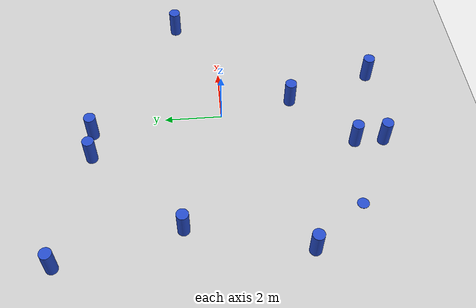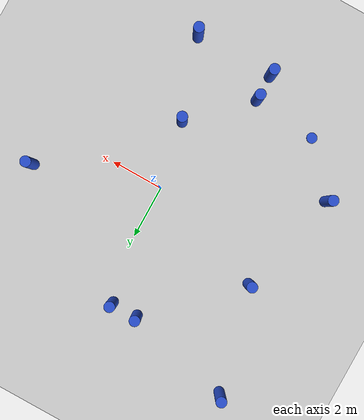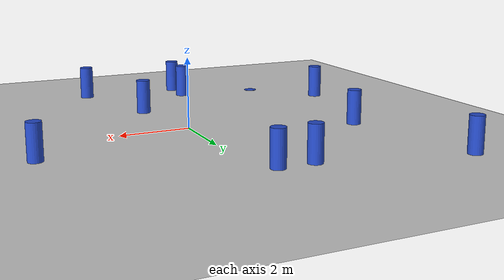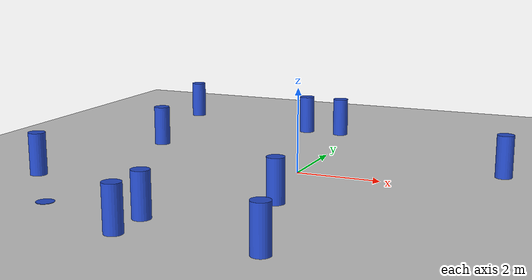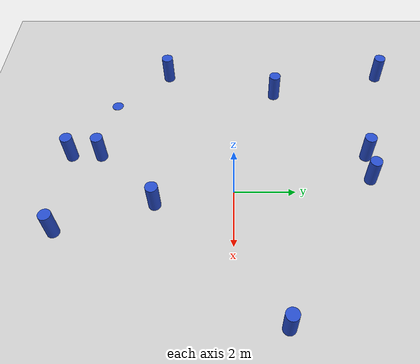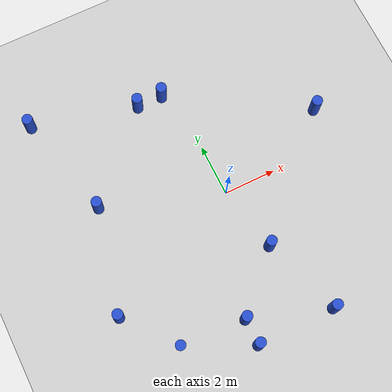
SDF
<sdf version="1.7">
 <world name="default">
  <physics type="ode">
   <ode>
    <solver>
     <type>quick</type>
     <iters>20</iters>
     <sor>1</sor>
     <use_dynamic_moi_rescaling>0</use_dynamic_moi_rescaling>
    </solver>
    <constraints>
     <cfm>0</cfm>
     <erp>0.2</erp>
     <contact_max_correcting_vel>100</contact_max_correcting_vel>
     <contact_surface_layer>0</contact_surface_layer>
    </constraints>
   </ode>
   <real_time_update_rate>1000</real_time_update_rate>
   <max_step_size>0.001</max_step_size>
   <real_time_factor>1</real_time_factor>
  </physics>
  <light name="sun" type="directional">
   <pose>0 0 10 0 -0 0</pose>
   <diffuse>0.8 0.8 0.8 1</diffuse>
   <specular>0.2 0.2 0.2 1</specular>
   <attenuation>
    <range>1000</range>
    <constant>0.9</constant>
    <linear>0.01</linear>
    <quadratic>0.001</quadratic>
   </attenuation>
   <direction>-0.5 0.1 -0.9</direction>
   <spot><inner_angle>0</inner_angle><outer_angle>0</outer_angle><falloff>0</falloff></spot>
  </light>
  <model name="ground_plane">
   <static>1</static>
   <link name="link">
    <collision name="collision">
     <geometry><plane><normal>0 0 1</normal><size>100 100</size></plane></geometry>
     <surface>
      <contact><collide_bitmask>65535</collide_bitmask></contact>
      <friction><ode><mu>100</mu><mu2>50</mu2></ode></friction>
     </surface>
    </collision>
    <visual name="visual">
     <cast_shadows>0</cast_shadows>
     <geometry><plane><normal>0 0 1</normal><size>100 100</size></plane></geometry>
     <material>
      <script><uri>file://media/materials/scripts/gazebo.material</uri><name>Gazebo/Grey</name></script>
     </material>
    </visual>
   </link>
  </model>
  <gravity>0 0 -9.81</gravity>
  <magnetic_field>6e-06 2.3e-05 -4.2e-05</magnetic_field>
  <atmosphere type="adiabatic"/>
  <scene><ambient>0.4 0.4 0.4 1</ambient><background>0.7 0.7 0.7 1</background><shadows>1</shadows></scene>
  <spherical_coordinates>
   <surface_model>EARTH_WGS84</surface_model>
   <latitude_deg>0</latitude_deg>
   <longitude_deg>0</longitude_deg>
   <elevation>0</elevation>
   <heading_deg>0</heading_deg>
  </spherical_coordinates>
  <model name="20x100cm_cylinder_clone">
   <link name="link">
    <inertial>
     <mass>1</mass>
     <inertia><ixx>0.145833</ixx><ixy>0</ixy><ixz>0</ixz><iyy>0.145833</iyy><iyz>0</iyz><izz>0.125</izz></inertia>
    </inertial>
    <visual name="visual">
     <geometry><cylinder><radius>0.2</radius><length>1</length></cylinder></geometry>
     <material>
      <script><name>Gazebo/Blue</name><uri>file://media/materials/scripts/gazebo.material</uri></script>
      <shader type="pixel"><normal_map>__default__</normal_map></shader>
      <ambient>0.3 0.3 0.3 1</ambient>
      <diffuse>0.7 0.7 0.7 1</diffuse>
      <specular>0.01 0.01 0.01 1</specular>
      <emissive>0 0 0 1</emissive>
     </material>
    </visual>
    <collision name="collision">
     <geometry><cylinder><radius>0.2</radius><length>1</length></cylinder></geometry>
     <surface>
      <friction>
       <ode><mu>1</mu><mu2>1</mu2><fdir1>0 0 0</fdir1><slip1>0</slip1><slip2>0</slip2></ode>
       <torsional>
        <coefficient>1</coefficient>
        <patch_radius>0</patch_radius>
        <surface_radius>0</surface_radius>
        <use_patch_radius>1</use_patch_radius>
        <ode><slip>0</slip></ode>
       </torsional>
      </friction>
      <bounce><restitution_coefficient>0</restitution_coefficient><threshold>1e+06</threshold></bounce>
      <contact>
       <collide_without_contact>0</collide_without_contact>
       <collide_without_contact_bitmask>1</collide_without_contact_bitmask>
       <collide_bitmask>1</collide_bitmask>
       <ode>
        <soft_cfm>0</soft_cfm>
        <soft_erp>0.2</soft_erp>
        <kp>1e+13</kp>
        <kd>1</kd>
        <max_vel>0.01</max_vel>
        <min_depth>0</min_depth>
       </ode>
       <bullet>
        <split_impulse>1</split_impulse>
        <split_impulse_penetration_threshold>-0.01</split_impulse_penetration_threshold>
        <soft_cfm>0</soft_cfm>
        <soft_erp>0.2</soft_erp>
        <kp>1e+13</kp>
        <kd>1</kd>
       </bullet>
      </contact>
     </surface>
    </collision>
   </link>
   <static>0</static>
   <pose>-5.49993 -2.49997 0.499999 1e-06 1e-06 -0.000211</pose>
  </model>
  <model name="20x100cm_cylinder_clone_0">
   <link name="link">
    <inertial>
     <mass>1</mass>
     <inertia><ixx>0.145833</ixx><ixy>0</ixy><ixz>0</ixz><iyy>0.145833</iyy><iyz>0</iyz><izz>0.125</izz></inertia>
    </inertial>
    <visual name="visual">
     <geometry><cylinder><radius>0.2</radius><length>1</length></cylinder></geometry>
     <material>
      <script><name>Gazebo/Blue</name><uri>file://media/materials/scripts/gazebo.material</uri></script>
      <shader type="pixel"><normal_map>__default__</normal_map></shader>
      <ambient>0.3 0.3 0.3 1</ambient>
      <diffuse>0.7 0.7 0.7 1</diffuse>
      <specular>0.01 0.01 0.01 1</specular>
      <emissive>0 0 0 1</emissive>
     </material>
    </visual>
    <collision name="collision">
     <geometry><cylinder><radius>0.2</radius><length>1</length></cylinder></geometry>
     <surface>
      <friction>
       <ode><mu>1</mu><mu2>1</mu2><fdir1>0 0 0</fdir1><slip1>0</slip1><slip2>0</slip2></ode>
       <torsional>
        <coefficient>1</coefficient>
        <patch_radius>0</patch_radius>
        <surface_radius>0</surface_radius>
        <use_patch_radius>1</use_patch_radius>
        <ode><slip>0</slip></ode>
       </torsional>
      </friction>
      <bounce><restitution_coefficient>0</restitution_coefficient><threshold>1e+06</threshold></bounce>
      <contact>
       <collide_without_contact>0</collide_without_contact>
       <collide_without_contact_bitmask>1</collide_without_contact_bitmask>
       <collide_bitmask>1</collide_bitmask>
       <ode>
        <soft_cfm>0</soft_cfm>
        <soft_erp>0.2</soft_erp>
        <kp>1e+13</kp>
        <kd>1</kd>
        <max_vel>0.01</max_vel>
        <min_depth>0</min_depth>
       </ode>
       <bullet>
        <split_impulse>1</split_impulse>
        <split_impulse_penetration_threshold>-0.01</split_impulse_penetration_threshold>
        <soft_cfm>0</soft_cfm>
        <soft_erp>0.2</soft_erp>
        <kp>1e+13</kp>
        <kd>1</kd>
       </bullet>
      </contact>
     </surface>
    </collision>
   </link>
   <static>0</static>
   <pose>-1.49993 -4.49997 0.499999 1e-06 1e-06 -0.000211</pose>
  </model>
  <model name="20x100cm_cylinder_clone_1">
   <link name="link">
    <inertial>
     <mass>1</mass>
     <inertia><ixx>0.145833</ixx><ixy>0</ixy><ixz>0</ixz><iyy>0.145833</iyy><iyz>0</iyz><izz>0.125</izz></inertia>
    </inertial>
    <visual name="visual">
     <geometry><cylinder><radius>0.2</radius><length>1</length></cylinder></geometry>
     <material>
      <script><name>Gazebo/Blue</name><uri>file://media/materials/scripts/gazebo.material</uri></script>
      <shader type="pixel"><normal_map>__default__</normal_map></shader>
      <ambient>0.3 0.3 0.3 1</ambient>
      <diffuse>0.7 0.7 0.7 1</diffuse>
      <specular>0.01 0.01 0.01 1</specular>
      <emissive>0 0 0 1</emissive>
     </material>
    </visual>
    <collision name="collision">
     <geometry><cylinder><radius>0.2</radius><length>1</length></cylinder></geometry>
     <surface>
      <friction>
       <ode><mu>1</mu><mu2>1</mu2><fdir1>0 0 0</fdir1><slip1>0</slip1><slip2>0</slip2></ode>
       <torsional>
        <coefficient>1</coefficient>
        <patch_radius>0</patch_radius>
        <surface_radius>0</surface_radius>
        <use_patch_radius>1</use_patch_radius>
        <ode><slip>0</slip></ode>
       </torsional>
      </friction>
      <bounce><restitution_coefficient>0</restitution_coefficient><threshold>1e+06</threshold></bounce>
      <contact>
       <collide_without_contact>0</collide_without_contact>
       <collide_without_contact_bitmask>1</collide_without_contact_bitmask>
       <collide_bitmask>1</collide_bitmask>
       <ode>
        <soft_cfm>0</soft_cfm>
        <soft_erp>0.2</soft_erp>
        <kp>1e+13</kp>
        <kd>1</kd>
        <max_vel>0.01</max_vel>
        <min_depth>0</min_depth>
       </ode>
       <bullet>
        <split_impulse>1</split_impulse>
        <split_impulse_penetration_threshold>-0.01</split_impulse_penetration_threshold>
        <soft_cfm>0</soft_cfm>
        <soft_erp>0.2</soft_erp>
        <kp>1e+13</kp>
        <kd>1</kd>
       </bullet>
      </contact>
     </surface>
    </collision>
   </link>
   <static>0</static>
   <pose>0.500068 -2.49997 0.499999 1e-06 1e-06 -0.000211</pose>
  </model>
  <model name="20x100cm_cylinder_clone_2">
   <link name="link">
    <inertial>
     <mass>1</mass>
     <inertia><ixx>0.145833</ixx><ixy>0</ixy><ixz>0</ixz><iyy>0.145833</iyy><iyz>0</iyz><izz>0.125</izz></inertia>
    </inertial>
    <visual name="visual">
     <geometry><cylinder><radius>0.2</radius><length>1</length></cylinder></geometry>
     <material>
      <script><name>Gazebo/Blue</name><uri>file://media/materials/scripts/gazebo.material</uri></script>
      <shader type="pixel"><normal_map>__default__</normal_map></shader>
      <ambient>0.3 0.3 0.3 1</ambient>
      <diffuse>0.7 0.7 0.7 1</diffuse>
      <specular>0.01 0.01 0.01 1</specular>
      <emissive>0 0 0 1</emissive>
     </material>
    </visual>
    <collision name="collision">
     <geometry><cylinder><radius>0.2</radius><length>1</length></cylinder></geometry>
     <surface>
      <friction>
       <ode><mu>1</mu><mu2>1</mu2><fdir1>0 0 0</fdir1><slip1>0</slip1><slip2>0</slip2></ode>
       <torsional>
        <coefficient>1</coefficient>
        <patch_radius>0</patch_radius>
        <surface_radius>0</surface_radius>
        <use_patch_radius>1</use_patch_radius>
        <ode><slip>0</slip></ode>
       </torsional>
      </friction>
      <bounce><restitution_coefficient>0</restitution_coefficient><threshold>1e+06</threshold></bounce>
      <contact>
       <collide_without_contact>0</collide_without_contact>
       <collide_without_contact_bitmask>1</collide_without_contact_bitmask>
       <collide_bitmask>1</collide_bitmask>
       <ode>
        <soft_cfm>0</soft_cfm>
        <soft_erp>0.2</soft_erp>
        <kp>1e+13</kp>
        <kd>1</kd>
        <max_vel>0.01</max_vel>
        <min_depth>0</min_depth>
       </ode>
       <bullet>
        <split_impulse>1</split_impulse>
        <split_impulse_penetration_threshold>-0.01</split_impulse_penetration_threshold>
        <soft_cfm>0</soft_cfm>
        <soft_erp>0.2</soft_erp>
        <kp>1e+13</kp>
        <kd>1</kd>
       </bullet>
      </contact>
     </surface>
    </collision>
   </link>
   <static>0</static>
   <pose>-4.49993 1.50003 0.499999 1e-06 1e-06 -0.000211</pose>
  </model>
  <model name="20x100cm_cylinder_clone_3">
   <link name="link">
    <inertial>
     <mass>1</mass>
     <inertia><ixx>0.145833</ixx><ixy>0</ixy><ixz>0</ixz><iyy>0.145833</iyy><iyz>0</iyz><izz>0.125</izz></inertia>
    </inertial>
    <visual name="visual">
     <geometry><cylinder><radius>0.2</radius><length>1</length></cylinder></geometry>
     <material>
      <script><name>Gazebo/Blue</name><uri>file://media/materials/scripts/gazebo.material</uri></script>
      <shader type="pixel"><normal_map>__default__</normal_map></shader>
      <ambient>0.3 0.3 0.3 1</ambient>
      <diffuse>0.7 0.7 0.7 1</diffuse>
      <specular>0.01 0.01 0.01 1</specular>
      <emissive>0 0 0 1</emissive>
     </material>
    </visual>
    <collision name="collision">
     <geometry><cylinder><radius>0.2</radius><length>1</length></cylinder></geometry>
     <surface>
      <friction>
       <ode><mu>1</mu><mu2>1</mu2><fdir1>0 0 0</fdir1><slip1>0</slip1><slip2>0</slip2></ode>
       <torsional>
        <coefficient>1</coefficient>
        <patch_radius>0</patch_radius>
        <surface_radius>0</surface_radius>
        <use_patch_radius>1</use_patch_radius>
        <ode><slip>0</slip></ode>
       </torsional>
      </friction>
      <bounce><restitution_coefficient>0</restitution_coefficient><threshold>1e+06</threshold></bounce>
      <contact>
       <collide_without_contact>0</collide_without_contact>
       <collide_without_contact_bitmask>1</collide_without_contact_bitmask>
       <collide_bitmask>1</collide_bitmask>
       <ode>
        <soft_cfm>0</soft_cfm>
        <soft_erp>0.2</soft_erp>
        <kp>1e+13</kp>
        <kd>1</kd>
        <max_vel>0.01</max_vel>
        <min_depth>0</min_depth>
       </ode>
       <bullet>
        <split_impulse>1</split_impulse>
        <split_impulse_penetration_threshold>-0.01</split_impulse_penetration_threshold>
        <soft_cfm>0</soft_cfm>
        <soft_erp>0.2</soft_erp>
        <kp>1e+13</kp>
        <kd>1</kd>
       </bullet>
      </contact>
     </surface>
    </collision>
   </link>
   <static>0</static>
   <pose>-1.49993 4.50003 0.499999 1e-06 1e-06 -0.000211</pose>
  </model>
  <model name="20x100cm_cylinder_clone_4">
   <link name="link">
    <inertial>
     <mass>1</mass>
     <inertia><ixx>0.145833</ixx><ixy>0</ixy><ixz>0</ixz><iyy>0.145833</iyy><iyz>0</iyz><izz>0.125</izz></inertia>
    </inertial>
    <visual name="visual">
     <geometry><cylinder><radius>0.2</radius><length>1</length></cylinder></geometry>
     <material>
      <script><name>Gazebo/Blue</name><uri>file://media/materials/scripts/gazebo.material</uri></script>
      <shader type="pixel"><normal_map>__default__</normal_map></shader>
      <ambient>0.3 0.3 0.3 1</ambient>
      <diffuse>0.7 0.7 0.7 1</diffuse>
      <specular>0.01 0.01 0.01 1</specular>
      <emissive>0 0 0 1</emissive>
     </material>
    </visual>
    <collision name="collision">
     <geometry><cylinder><radius>0.2</radius><length>1</length></cylinder></geometry>
     <surface>
      <friction>
       <ode><mu>1</mu><mu2>1</mu2><fdir1>0 0 0</fdir1><slip1>0</slip1><slip2>0</slip2></ode>
       <torsional>
        <coefficient>1</coefficient>
        <patch_radius>0</patch_radius>
        <surface_radius>0</surface_radius>
        <use_patch_radius>1</use_patch_radius>
        <ode><slip>0</slip></ode>
       </torsional>
      </friction>
      <bounce><restitution_coefficient>0</restitution_coefficient><threshold>1e+06</threshold></bounce>
      <contact>
       <collide_without_contact>0</collide_without_contact>
       <collide_without_contact_bitmask>1</collide_without_contact_bitmask>
       <collide_bitmask>1</collide_bitmask>
       <ode>
        <soft_cfm>0</soft_cfm>
        <soft_erp>0.2</soft_erp>
        <kp>1e+13</kp>
        <kd>1</kd>
        <max_vel>0.01</max_vel>
        <min_depth>0</min_depth>
       </ode>
       <bullet>
        <split_impulse>1</split_impulse>
        <split_impulse_penetration_threshold>-0.01</split_impulse_penetration_threshold>
        <soft_cfm>0</soft_cfm>
        <soft_erp>0.2</soft_erp>
        <kp>1e+13</kp>
        <kd>1</kd>
       </bullet>
      </contact>
     </surface>
    </collision>
   </link>
   <static>0</static>
   <pose>-5.49993 5.50003 0.499999 1e-06 1e-06 -0.000211</pose>
  </model>
  <model name="20x100cm_cylinder_clone_5">
   <link name="link">
    <inertial>
     <mass>1</mass>
     <inertia><ixx>0.145833</ixx><ixy>0</ixy><ixz>0</ixz><iyy>0.145833</iyy><iyz>0</iyz><izz>0.125</izz></inertia>
    </inertial>
    <visual name="visual">
     <geometry><cylinder><radius>0.2</radius><length>1</length></cylinder></geometry>
     <material>
      <script><name>Gazebo/Blue</name><uri>file://media/materials/scripts/gazebo.material</uri></script>
      <shader type="pixel"><normal_map>__default__</normal_map></shader>
      <ambient>0.3 0.3 0.3 1</ambient>
      <diffuse>0.7 0.7 0.7 1</diffuse>
      <specular>0.01 0.01 0.01 1</specular>
      <emissive>0 0 0 1</emissive>
     </material>
    </visual>
    <collision name="collision">
     <geometry><cylinder><radius>0.2</radius><length>1</length></cylinder></geometry>
     <surface>
      <friction>
       <ode><mu>1</mu><mu2>1</mu2><fdir1>0 0 0</fdir1><slip1>0</slip1><slip2>0</slip2></ode>
       <torsional>
        <coefficient>1</coefficient>
        <patch_radius>0</patch_radius>
        <surface_radius>0</surface_radius>
        <use_patch_radius>1</use_patch_radius>
        <ode><slip>0</slip></ode>
       </torsional>
      </friction>
      <bounce><restitution_coefficient>0</restitution_coefficient><threshold>1e+06</threshold></bounce>
      <contact>
       <collide_without_contact>0</collide_without_contact>
       <collide_without_contact_bitmask>1</collide_without_contact_bitmask>
       <collide_bitmask>1</collide_bitmask>
       <ode>
        <soft_cfm>0</soft_cfm>
        <soft_erp>0.2</soft_erp>
        <kp>1e+13</kp>
        <kd>1</kd>
        <max_vel>0.01</max_vel>
        <min_depth>0</min_depth>
       </ode>
       <bullet>
        <split_impulse>1</split_impulse>
        <split_impulse_penetration_threshold>-0.01</split_impulse_penetration_threshold>
        <soft_cfm>0</soft_cfm>
        <soft_erp>0.2</soft_erp>
        <kp>1e+13</kp>
        <kd>1</kd>
       </bullet>
      </contact>
     </surface>
    </collision>
   </link>
   <static>0</static>
   <pose>4.50007 1.50003 0.499999 1e-06 1e-06 -0.000211</pose>
  </model>
  <model name="20x100cm_cylinder_clone_6">
   <link name="link">
    <inertial>
     <mass>1</mass>
     <inertia><ixx>0.145833</ixx><ixy>0</ixy><ixz>0</ixz><iyy>0.145833</iyy><iyz>0</iyz><izz>0.125</izz></inertia>
    </inertial>
    <visual name="visual">
     <geometry><cylinder><radius>0.2</radius><length>1</length></cylinder></geometry>
     <material>
      <script><name>Gazebo/Blue</name><uri>file://media/materials/scripts/gazebo.material</uri></script>
      <shader type="pixel"><normal_map>__default__</normal_map></shader>
      <ambient>0.3 0.3 0.3 1</ambient>
      <diffuse>0.7 0.7 0.7 1</diffuse>
      <specular>0.01 0.01 0.01 1</specular>
      <emissive>0 0 0 1</emissive>
     </material>
    </visual>
    <collision name="collision">
     <geometry><cylinder><radius>0.2</radius><length>1</length></cylinder></geometry>
     <surface>
      <friction>
       <ode><mu>1</mu><mu2>1</mu2><fdir1>0 0 0</fdir1><slip1>0</slip1><slip2>0</slip2></ode>
       <torsional>
        <coefficient>1</coefficient>
        <patch_radius>0</patch_radius>
        <surface_radius>0</surface_radius>
        <use_patch_radius>1</use_patch_radius>
        <ode><slip>0</slip></ode>
       </torsional>
      </friction>
      <bounce><restitution_coefficient>0</restitution_coefficient><threshold>1e+06</threshold></bounce>
      <contact>
       <collide_without_contact>0</collide_without_contact>
       <collide_without_contact_bitmask>1</collide_without_contact_bitmask>
       <collide_bitmask>1</collide_bitmask>
       <ode>
        <soft_cfm>0</soft_cfm>
        <soft_erp>0.2</soft_erp>
        <kp>1e+13</kp>
        <kd>1</kd>
        <max_vel>0.01</max_vel>
        <min_depth>0</min_depth>
       </ode>
       <bullet>
        <split_impulse>1</split_impulse>
        <split_impulse_penetration_threshold>-0.01</split_impulse_penetration_threshold>
        <soft_cfm>0</soft_cfm>
        <soft_erp>0.2</soft_erp>
        <kp>1e+13</kp>
        <kd>1</kd>
       </bullet>
      </contact>
     </surface>
    </collision>
   </link>
   <static>0</static>
   <pose>-0.499932 4.50003 0.499999 1e-06 1e-06 -0.000211</pose>
  </model>
  <model name="20x100cm_cylinder_clone_7">
   <link name="link">
    <inertial>
     <mass>1</mass>
     <inertia><ixx>0.145833</ixx><ixy>0</ixy><ixz>0</ixz><iyy>0.145833</iyy><iyz>0</iyz><izz>0.125</izz></inertia>
    </inertial>
    <visual name="visual">
     <geometry><cylinder><radius>0.2</radius><length>1</length></cylinder></geometry>
     <material>
      <script><name>Gazebo/Blue</name><uri>file://media/materials/scripts/gazebo.material</uri></script>
      <shader type="pixel"><normal_map>__default__</normal_map></shader>
      <ambient>0.3 0.3 0.3 1</ambient>
      <diffuse>0.7 0.7 0.7 1</diffuse>
      <specular>0.01 0.01 0.01 1</specular>
      <emissive>0 0 0 1</emissive>
     </material>
    </visual>
    <collision name="collision">
     <geometry><cylinder><radius>0.2</radius><length>1</length></cylinder></geometry>
     <surface>
      <friction>
       <ode><mu>1</mu><mu2>1</mu2><fdir1>0 0 0</fdir1><slip1>0</slip1><slip2>0</slip2></ode>
       <torsional>
        <coefficient>1</coefficient>
        <patch_radius>0</patch_radius>
        <surface_radius>0</surface_radius>
        <use_patch_radius>1</use_patch_radius>
        <ode><slip>0</slip></ode>
       </torsional>
      </friction>
      <bounce><restitution_coefficient>0</restitution_coefficient><threshold>1e+06</threshold></bounce>
      <contact>
       <collide_without_contact>0</collide_without_contact>
       <collide_without_contact_bitmask>1</collide_without_contact_bitmask>
       <collide_bitmask>1</collide_bitmask>
       <ode>
        <soft_cfm>0</soft_cfm>
        <soft_erp>0.2</soft_erp>
        <kp>1e+13</kp>
        <kd>1</kd>
        <max_vel>0.01</max_vel>
        <min_depth>0</min_depth>
       </ode>
       <bullet>
        <split_impulse>1</split_impulse>
        <split_impulse_penetration_threshold>-0.01</split_impulse_penetration_threshold>
        <soft_cfm>0</soft_cfm>
        <soft_erp>0.2</soft_erp>
        <kp>1e+13</kp>
        <kd>1</kd>
       </bullet>
      </contact>
     </surface>
    </collision>
   </link>
   <static>0</static>
   <pose>1.50007 -5.49997 0.499999 1e-06 1e-06 -0.000211</pose>
  </model>
  <model name="20x100cm_cylinder_clone_8">
   <link name="link">
    <inertial>
     <mass>1</mass>
     <inertia><ixx>0.145833</ixx><ixy>0</ixy><ixz>0</ixz><iyy>0.145833</iyy><iyz>0</iyz><izz>0.125</izz></inertia>
    </inertial>
    <visual name="visual">
     <geometry><cylinder><radius>0.2</radius><length>1</length></cylinder></geometry>
     <material>
      <script><name>Gazebo/Blue</name><uri>file://media/materials/scripts/gazebo.material</uri></script>
      <shader type="pixel"><normal_map>__default__</normal_map></shader>
      <ambient>0.3 0.3 0.3 1</ambient>
      <diffuse>0.7 0.7 0.7 1</diffuse>
      <specular>0.01 0.01 0.01 1</specular>
      <emissive>0 0 0 1</emissive>
     </material>
    </visual>
    <collision name="collision">
     <geometry><cylinder><radius>0.2</radius><length>1</length></cylinder></geometry>
     <surface>
      <friction>
       <ode><mu>1</mu><mu2>1</mu2><fdir1>0 0 0</fdir1><slip1>0</slip1><slip2>0</slip2></ode>
       <torsional>
        <coefficient>1</coefficient>
        <patch_radius>0</patch_radius>
        <surface_radius>0</surface_radius>
        <use_patch_radius>1</use_patch_radius>
        <ode><slip>0</slip></ode>
       </torsional>
      </friction>
      <bounce><restitution_coefficient>0</restitution_coefficient><threshold>1e+06</threshold></bounce>
      <contact>
       <collide_without_contact>0</collide_without_contact>
       <collide_without_contact_bitmask>1</collide_without_contact_bitmask>
       <collide_bitmask>1</collide_bitmask>
       <ode>
        <soft_cfm>0</soft_cfm>
        <soft_erp>0.2</soft_erp>
        <kp>1e+13</kp>
        <kd>1</kd>
        <max_vel>0.01</max_vel>
        <min_depth>0</min_depth>
       </ode>
       <bullet>
        <split_impulse>1</split_impulse>
        <split_impulse_penetration_threshold>-0.01</split_impulse_penetration_threshold>
        <soft_cfm>0</soft_cfm>
        <soft_erp>0.2</soft_erp>
        <kp>1e+13</kp>
        <kd>1</kd>
       </bullet>
      </contact>
     </surface>
    </collision>
   </link>
   <static>0</static>
   <pose>-1.49993 -5.49997 0.499999 1e-06 1e-06 -0.000211</pose>
  </model>
  <model name="goal">
   <link name="link">
    <inertial>
     <mass>1</mass>
     <inertia><ixx>0.145833</ixx><ixy>0</ixy><ixz>0</ixz><iyy>0.145833</iyy><iyz>0</iyz><izz>0.125</izz></inertia>
    </inertial>
    <visual name="visual">
     <geometry><cylinder><radius>0.2</radius><length>0.01</length></cylinder></geometry>
     <material>
      <script><name>Gazebo/Blue</name><uri>file://media/materials/scripts/gazebo.material</uri></script>
      <shader type="pixel"><normal_map>__default__</normal_map></shader>
      <ambient>0.3 0.3 0.3 1</ambient>
      <diffuse>0.7 0.7 0.7 1</diffuse>
      <specular>0.01 0.01 0.01 1</specular>
      <emissive>1 0 0 1</emissive>
     </material>
    </visual>
    <collision name="collision">
     <geometry><cylinder><radius>0.2</radius><length>0.01</length></cylinder></geometry>
     <surface>
      <friction>
       <ode><mu>1</mu><mu2>1</mu2><fdir1>0 0 0</fdir1><slip1>0</slip1><slip2>0</slip2></ode>
       <torsional>
        <coefficient>1</coefficient>
        <patch_radius>0</patch_radius>
        <surface_radius>0</surface_radius>
        <use_patch_radius>1</use_patch_radius>
        <ode><slip>0</slip></ode>
       </torsional>
      </friction>
      <bounce><restitution_coefficient>0</restitution_coefficient><threshold>1e+06</threshold></bounce>
      <contact>
       <collide_without_contact>0</collide_without_contact>
       <collide_without_contact_bitmask>1</collide_without_contact_bitmask>
       <collide_bitmask>1</collide_bitmask>
       <ode>
        <soft_cfm>0</soft_cfm>
        <soft_erp>0.2</soft_erp>
        <kp>1e+13</kp>
        <kd>1</kd>
        <max_vel>0.01</max_vel>
        <min_depth>0</min_depth>
       </ode>
       <bullet>
        <split_impulse>1</split_impulse>
        <split_impulse_penetration_threshold>-0.01</split_impulse_penetration_threshold>
        <soft_cfm>0</soft_cfm>
        <soft_erp>0.2</soft_erp>
        <kp>1e+13</kp>
        <kd>1</kd>
       </bullet>
      </contact>
     </surface>
    </collision>
   </link>
   <static>0</static>
   <pose>-3.95266 -4.30704 0.004991 0 -0 0</pose>
  </model>
 </world>
</sdf>
